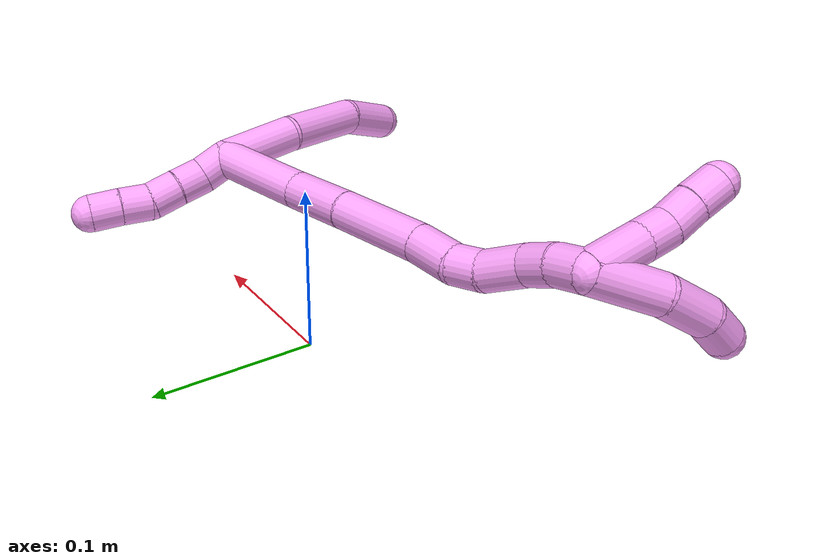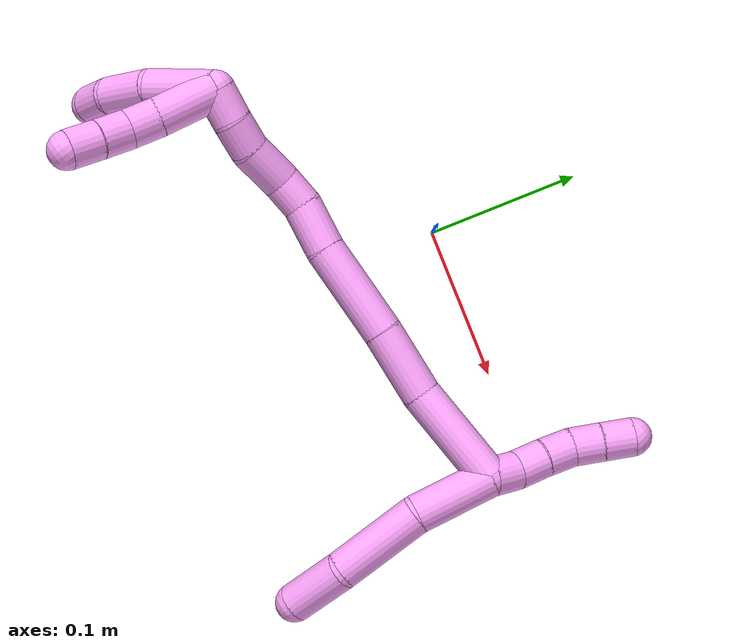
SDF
<sdf version="1.7">
 <world name="default">
  <model name="4">
   <static>0</static>
   <link name="4">
    <collision name="collision-cylinder-e_1_2_8">
     <pose>-0.004291 -0.00292 -0.025327 3.0268 -0.166753 -1.93691</pose>
     <geometry><cylinder><radius>0.0125</radius><length>0.051707</length></cylinder></geometry>
     <surface>
      <friction><ode><mu>1.16</mu><mu2>1.16</mu2><slip1>0</slip1><slip2>0</slip2></ode></friction>
      <contact><ode><kp>1e+06</kp><kd>1</kd><max_vel>0</max_vel><min_depth>0.001</min_depth></ode></contact>
     </surface>
    </collision>
    <visual name="visual-cylinder-e_1_2_8">
     <pose>-0.004291 -0.00292 -0.025327 3.0268 -0.166753 -1.93691</pose>
     <geometry><cylinder><radius>0.0125</radius><length>0.051707</length></cylinder></geometry>
     <material><ambient>1 0.65098 0.996078 1</ambient></material>
    </visual>
    <collision name="collision-cylinder-e_2_8_9">
     <pose>-0.00786 -0.004148 -0.079813 -3.08362 0.024726 -0.806196</pose>
     <geometry><cylinder><radius>0.0125</radius><length>0.058435</length></cylinder></geometry>
     <surface>
      <friction><ode><mu>1.16</mu><mu2>1.16</mu2><slip1>0</slip1><slip2>0</slip2></ode></friction>
      <contact><ode><kp>1e+06</kp><kd>1</kd><max_vel>0</max_vel><min_depth>0.001</min_depth></ode></contact>
     </surface>
    </collision>
    <visual name="visual-cylinder-e_2_8_9">
     <pose>-0.00786 -0.004148 -0.079813 -3.08362 0.024726 -0.806196</pose>
     <geometry><cylinder><radius>0.0125</radius><length>0.058435</length></cylinder></geometry>
     <material><ambient>1 0.65098 0.996078 1</ambient></material>
    </visual>
    <collision name="collision-cylinder-e_3_9_6">
     <pose>-0.006827 0.004459 -0.127661 -2.78719 0.015591 -0.087008</pose>
     <geometry><cylinder><radius>0.0125</radius><length>0.039858</length></cylinder></geometry>
     <surface>
      <friction><ode><mu>1.16</mu><mu2>1.16</mu2><slip1>0</slip1><slip2>0</slip2></ode></friction>
      <contact><ode><kp>1e+06</kp><kd>1</kd><max_vel>0</max_vel><min_depth>0.001</min_depth></ode></contact>
     </surface>
    </collision>
    <visual name="visual-cylinder-e_3_9_6">
     <pose>-0.006827 0.004459 -0.127661 -2.78719 0.015591 -0.087008</pose>
     <geometry><cylinder><radius>0.0125</radius><length>0.039858</length></cylinder></geometry>
     <material><ambient>1 0.65098 0.996078 1</ambient></material>
    </visual>
    <collision name="collision-cylinder-e_1_2_10">
     <pose>0.00351 0.004947 0.00795 -0.556582 0.35865 -0.103488</pose>
     <geometry><cylinder><radius>0.0125</radius><length>0.02</length></cylinder></geometry>
     <surface>
      <friction><ode><mu>1.16</mu><mu2>1.16</mu2><slip1>0</slip1><slip2>0</slip2></ode></friction>
      <contact><ode><kp>1e+06</kp><kd>1</kd><max_vel>0</max_vel><min_depth>0.001</min_depth></ode></contact>
     </surface>
    </collision>
    <visual name="visual-cylinder-e_1_2_10">
     <pose>0.00351 0.004947 0.00795 -0.556582 0.35865 -0.103488</pose>
     <geometry><cylinder><radius>0.0125</radius><length>0.02</length></cylinder></geometry>
     <material><ambient>1 0.65098 0.996078 1</ambient></material>
    </visual>
    <collision name="collision-cylinder-e_2_10_11">
     <pose>0.00923 0.012286 0.025356 -0.247843 0.22279 -0.027864</pose>
     <geometry><cylinder><radius>0.0125</radius><length>0.02</length></cylinder></geometry>
     <surface>
      <friction><ode><mu>1.16</mu><mu2>1.16</mu2><slip1>0</slip1><slip2>0</slip2></ode></friction>
      <contact><ode><kp>1e+06</kp><kd>1</kd><max_vel>0</max_vel><min_depth>0.001</min_depth></ode></contact>
     </surface>
    </collision>
    <visual name="visual-cylinder-e_2_10_11">
     <pose>0.00923 0.012286 0.025356 -0.247843 0.22279 -0.027864</pose>
     <geometry><cylinder><radius>0.0125</radius><length>0.02</length></cylinder></geometry>
     <material><ambient>1 0.65098 0.996078 1</ambient></material>
    </visual>
    <collision name="collision-cylinder-e_3_11_12">
     <pose>0.014156 0.017619 0.043974 -0.310471 0.275112 -0.04332</pose>
     <geometry><cylinder><radius>0.0125</radius><length>0.02</length></cylinder></geometry>
     <surface>
      <friction><ode><mu>1.16</mu><mu2>1.16</mu2><slip1>0</slip1><slip2>0</slip2></ode></friction>
      <contact><ode><kp>1e+06</kp><kd>1</kd><max_vel>0</max_vel><min_depth>0.001</min_depth></ode></contact>
     </surface>
    </collision>
    <visual name="visual-cylinder-e_3_11_12">
     <pose>0.014156 0.017619 0.043974 -0.310471 0.275112 -0.04332</pose>
     <geometry><cylinder><radius>0.0125</radius><length>0.02</length></cylinder></geometry>
     <material><ambient>1 0.65098 0.996078 1</ambient></material>
    </visual>
    <collision name="collision-cylinder-e_4_12_13">
     <pose>0.021269 0.020852 0.062115 -0.03263 0.455271 -0.007559</pose>
     <geometry><cylinder><radius>0.0125</radius><length>0.02</length></cylinder></geometry>
     <surface>
      <friction><ode><mu>1.16</mu><mu2>1.16</mu2><slip1>0</slip1><slip2>0</slip2></ode></friction>
      <contact><ode><kp>1e+06</kp><kd>1</kd><max_vel>0</max_vel><min_depth>0.001</min_depth></ode></contact>
     </surface>
    </collision>
    <visual name="visual-cylinder-e_4_12_13">
     <pose>0.021269 0.020852 0.062115 -0.03263 0.455271 -0.007559</pose>
     <geometry><cylinder><radius>0.0125</radius><length>0.02</length></cylinder></geometry>
     <material><ambient>1 0.65098 0.996078 1</ambient></material>
    </visual>
    <collision name="collision-cylinder-e_5_13_5">
     <pose>0.03015 0.022061 0.079983 -0.102706 0.464887 -0.024333</pose>
     <geometry><cylinder><radius>0.0125</radius><length>0.02</length></cylinder></geometry>
     <surface>
      <friction><ode><mu>1.16</mu><mu2>1.16</mu2><slip1>0</slip1><slip2>0</slip2></ode></friction>
      <contact><ode><kp>1e+06</kp><kd>1</kd><max_vel>0</max_vel><min_depth>0.001</min_depth></ode></contact>
     </surface>
    </collision>
    <visual name="visual-cylinder-e_5_13_5">
     <pose>0.03015 0.022061 0.079983 -0.102706 0.464887 -0.024333</pose>
     <geometry><cylinder><radius>0.0125</radius><length>0.02</length></cylinder></geometry>
     <material><ambient>1 0.65098 0.996078 1</ambient></material>
    </visual>
    <collision name="collision-cylinder-e_1_2_14">
     <pose>-0.033414 0.002488 -0.00214 -2.28102 -1.47289 2.20431</pose>
     <geometry><cylinder><radius>0.0125</radius><length>0.067149</length></cylinder></geometry>
     <surface>
      <friction><ode><mu>1.16</mu><mu2>1.16</mu2><slip1>0</slip1><slip2>0</slip2></ode></friction>
      <contact><ode><kp>1e+06</kp><kd>1</kd><max_vel>0</max_vel><min_depth>0.001</min_depth></ode></contact>
     </surface>
    </collision>
    <visual name="visual-cylinder-e_1_2_14">
     <pose>-0.033414 0.002488 -0.00214 -2.28102 -1.47289 2.20431</pose>
     <geometry><cylinder><radius>0.0125</radius><length>0.067149</length></cylinder></geometry>
     <material><ambient>1 0.65098 0.996078 1</ambient></material>
    </visual>
    <collision name="collision-cylinder-e_2_14_15">
     <pose>-0.089867 0.004092 -0.002649 0.497254 -1.49045 -0.460221</pose>
     <geometry><cylinder><radius>0.0125</radius><length>0.046229</length></cylinder></geometry>
     <surface>
      <friction><ode><mu>1.16</mu><mu2>1.16</mu2><slip1>0</slip1><slip2>0</slip2></ode></friction>
      <contact><ode><kp>1e+06</kp><kd>1</kd><max_vel>0</max_vel><min_depth>0.001</min_depth></ode></contact>
     </surface>
    </collision>
    <visual name="visual-cylinder-e_2_14_15">
     <pose>-0.089867 0.004092 -0.002649 0.497254 -1.49045 -0.460221</pose>
     <geometry><cylinder><radius>0.0125</radius><length>0.046229</length></cylinder></geometry>
     <material><ambient>1 0.65098 0.996078 1</ambient></material>
    </visual>
    <collision name="collision-cylinder-e_3_15_16">
     <pose>-0.144354 0.00371 -0.000507 -0.776488 -1.54797 0.760619</pose>
     <geometry><cylinder><radius>0.0125</radius><length>0.06291</length></cylinder></geometry>
     <surface>
      <friction><ode><mu>1.16</mu><mu2>1.16</mu2><slip1>0</slip1><slip2>0</slip2></ode></friction>
      <contact><ode><kp>1e+06</kp><kd>1</kd><max_vel>0</max_vel><min_depth>0.001</min_depth></ode></contact>
     </surface>
    </collision>
    <visual name="visual-cylinder-e_3_15_16">
     <pose>-0.144354 0.00371 -0.000507 -0.776488 -1.54797 0.760619</pose>
     <geometry><cylinder><radius>0.0125</radius><length>0.06291</length></cylinder></geometry>
     <material><ambient>1 0.65098 0.996078 1</ambient></material>
    </visual>
    <collision name="collision-cylinder-e_4_16_17">
     <pose>-0.191189 0.004789 0.002246 -0.251304 -1.4216 0.216647</pose>
     <geometry><cylinder><radius>0.0125</radius><length>0.031123</length></cylinder></geometry>
     <surface>
      <friction><ode><mu>1.16</mu><mu2>1.16</mu2><slip1>0</slip1><slip2>0</slip2></ode></friction>
      <contact><ode><kp>1e+06</kp><kd>1</kd><max_vel>0</max_vel><min_depth>0.001</min_depth></ode></contact>
     </surface>
    </collision>
    <visual name="visual-cylinder-e_4_16_17">
     <pose>-0.191189 0.004789 0.002246 -0.251304 -1.4216 0.216647</pose>
     <geometry><cylinder><radius>0.0125</radius><length>0.031123</length></cylinder></geometry>
     <material><ambient>1 0.65098 0.996078 1</ambient></material>
    </visual>
    <collision name="collision-cylinder-e_5_17_18">
     <pose>-0.216628 0.004212 0.003576 2.23968 -1.42578 -2.12048</pose>
     <geometry><cylinder><radius>0.0125</radius><length>0.020314</length></cylinder></geometry>
     <surface>
      <friction><ode><mu>1.16</mu><mu2>1.16</mu2><slip1>0</slip1><slip2>0</slip2></ode></friction>
      <contact><ode><kp>1e+06</kp><kd>1</kd><max_vel>0</max_vel><min_depth>0.001</min_depth></ode></contact>
     </surface>
    </collision>
    <visual name="visual-cylinder-e_5_17_18">
     <pose>-0.216628 0.004212 0.003576 2.23968 -1.42578 -2.12048</pose>
     <geometry><cylinder><radius>0.0125</radius><length>0.020314</length></cylinder></geometry>
     <material><ambient>1 0.65098 0.996078 1</ambient></material>
    </visual>
    <collision name="collision-cylinder-e_6_18_19">
     <pose>-0.239952 -0.002859 0.00041 1.93494 -1.12546 -1.48256</pose>
     <geometry><cylinder><radius>0.0125</radius><length>0.029417</length></cylinder></geometry>
     <surface>
      <friction><ode><mu>1.16</mu><mu2>1.16</mu2><slip1>0</slip1><slip2>0</slip2></ode></friction>
      <contact><ode><kp>1e+06</kp><kd>1</kd><max_vel>0</max_vel><min_depth>0.001</min_depth></ode></contact>
     </surface>
    </collision>
    <visual name="visual-cylinder-e_6_18_19">
     <pose>-0.239952 -0.002859 0.00041 1.93494 -1.12546 -1.48256</pose>
     <geometry><cylinder><radius>0.0125</radius><length>0.029417</length></cylinder></geometry>
     <material><ambient>1 0.65098 0.996078 1</ambient></material>
    </visual>
    <collision name="collision-cylinder-e_7_19_20">
     <pose>-0.26306 -0.012739 -0.001003 1.36083 -1.18024 -0.993428</pose>
     <geometry><cylinder><radius>0.0125</radius><length>0.02127</length></cylinder></geometry>
     <surface>
      <friction><ode><mu>1.16</mu><mu2>1.16</mu2><slip1>0</slip1><slip2>0</slip2></ode></friction>
      <contact><ode><kp>1e+06</kp><kd>1</kd><max_vel>0</max_vel><min_depth>0.001</min_depth></ode></contact>
     </surface>
    </collision>
    <visual name="visual-cylinder-e_7_19_20">
     <pose>-0.26306 -0.012739 -0.001003 1.36083 -1.18024 -0.993428</pose>
     <geometry><cylinder><radius>0.0125</radius><length>0.02127</length></cylinder></geometry>
     <material><ambient>1 0.65098 0.996078 1</ambient></material>
    </visual>
    <collision name="collision-cylinder-e_8_20_1">
     <pose>-0.28336 -0.018936 0.001249 1.00894 -1.3234 -0.81221</pose>
     <geometry><cylinder><radius>0.0125</radius><length>0.021589</length></cylinder></geometry>
     <surface>
      <friction><ode><mu>1.16</mu><mu2>1.16</mu2><slip1>0</slip1><slip2>0</slip2></ode></friction>
      <contact><ode><kp>1e+06</kp><kd>1</kd><max_vel>0</max_vel><min_depth>0.001</min_depth></ode></contact>
     </surface>
    </collision>
    <visual name="visual-cylinder-e_8_20_1">
     <pose>-0.28336 -0.018936 0.001249 1.00894 -1.3234 -0.81221</pose>
     <geometry><cylinder><radius>0.0125</radius><length>0.021589</length></cylinder></geometry>
     <material><ambient>1 0.65098 0.996078 1</ambient></material>
    </visual>
    <collision name="collision-cylinder-e_1_1_21">
     <pose>-0.307226 -0.01309 -0.013507 -2.67792 -0.638014 1.90044</pose>
     <geometry><cylinder><radius>0.0125</radius><length>0.044998</length></cylinder></geometry>
     <surface>
      <friction><ode><mu>1.16</mu><mu2>1.16</mu2><slip1>0</slip1><slip2>0</slip2></ode></friction>
      <contact><ode><kp>1e+06</kp><kd>1</kd><max_vel>0</max_vel><min_depth>0.001</min_depth></ode></contact>
     </surface>
    </collision>
    <visual name="visual-cylinder-e_1_1_21">
     <pose>-0.307226 -0.01309 -0.013507 -2.67792 -0.638014 1.90044</pose>
     <geometry><cylinder><radius>0.0125</radius><length>0.044998</length></cylinder></geometry>
     <material><ambient>1 0.65098 0.996078 1</ambient></material>
    </visual>
    <collision name="collision-cylinder-e_2_21_22">
     <pose>-0.327462 0.003955 -0.041695 -2.50099 -0.427663 1.15923</pose>
     <geometry><cylinder><radius>0.0125</radius><length>0.032959</length></cylinder></geometry>
     <surface>
      <friction><ode><mu>1.16</mu><mu2>1.16</mu2><slip1>0</slip1><slip2>0</slip2></ode></friction>
      <contact><ode><kp>1e+06</kp><kd>1</kd><max_vel>0</max_vel><min_depth>0.001</min_depth></ode></contact>
     </surface>
    </collision>
    <visual name="visual-cylinder-e_2_21_22">
     <pose>-0.327462 0.003955 -0.041695 -2.50099 -0.427663 1.15923</pose>
     <geometry><cylinder><radius>0.0125</radius><length>0.032959</length></cylinder></geometry>
     <material><ambient>1 0.65098 0.996078 1</ambient></material>
    </visual>
    <collision name="collision-cylinder-e_3_22_4">
     <pose>-0.337089 0.021081 -0.060575 -2.26951 -0.25616 0.539317</pose>
     <geometry><cylinder><radius>0.0125</radius><length>0.022042</length></cylinder></geometry>
     <surface>
      <friction><ode><mu>1.16</mu><mu2>1.16</mu2><slip1>0</slip1><slip2>0</slip2></ode></friction>
      <contact><ode><kp>1e+06</kp><kd>1</kd><max_vel>0</max_vel><min_depth>0.001</min_depth></ode></contact>
     </surface>
    </collision>
    <visual name="visual-cylinder-e_3_22_4">
     <pose>-0.337089 0.021081 -0.060575 -2.26951 -0.25616 0.539317</pose>
     <geometry><cylinder><radius>0.0125</radius><length>0.022042</length></cylinder></geometry>
     <material><ambient>1 0.65098 0.996078 1</ambient></material>
    </visual>
    <collision name="collision-cylinder-e_1_1_23">
     <pose>-0.2969 -0.023968 -0.016302 2.99525 -0.159065 -1.65436</pose>
     <geometry><cylinder><radius>0.0125</radius><length>0.038819</length></cylinder></geometry>
     <surface>
      <friction><ode><mu>1.16</mu><mu2>1.16</mu2><slip1>0</slip1><slip2>0</slip2></ode></friction>
      <contact><ode><kp>1e+06</kp><kd>1</kd><max_vel>0</max_vel><min_depth>0.001</min_depth></ode></contact>
     </surface>
    </collision>
    <visual name="visual-cylinder-e_1_1_23">
     <pose>-0.2969 -0.023968 -0.016302 2.99525 -0.159065 -1.65436</pose>
     <geometry><cylinder><radius>0.0125</radius><length>0.038819</length></cylinder></geometry>
     <material><ambient>1 0.65098 0.996078 1</ambient></material>
    </visual>
    <collision name="collision-cylinder-e_2_23_24">
     <pose>-0.302083 -0.028737 -0.044968 2.94096 -0.209713 -1.61538</pose>
     <geometry><cylinder><radius>0.0125</radius><length>0.020254</length></cylinder></geometry>
     <surface>
      <friction><ode><mu>1.16</mu><mu2>1.16</mu2><slip1>0</slip1><slip2>0</slip2></ode></friction>
      <contact><ode><kp>1e+06</kp><kd>1</kd><max_vel>0</max_vel><min_depth>0.001</min_depth></ode></contact>
     </surface>
    </collision>
    <visual name="visual-cylinder-e_2_23_24">
     <pose>-0.302083 -0.028737 -0.044968 2.94096 -0.209713 -1.61538</pose>
     <geometry><cylinder><radius>0.0125</radius><length>0.020254</length></cylinder></geometry>
     <material><ambient>1 0.65098 0.996078 1</ambient></material>
    </visual>
    <collision name="collision-cylinder-e_3_24_25">
     <pose>-0.306221 -0.03526 -0.063511 2.66611 -0.201464 -0.79033</pose>
     <geometry><cylinder><radius>0.0125</radius><length>0.020289</length></cylinder></geometry>
     <surface>
      <friction><ode><mu>1.16</mu><mu2>1.16</mu2><slip1>0</slip1><slip2>0</slip2></ode></friction>
      <contact><ode><kp>1e+06</kp><kd>1</kd><max_vel>0</max_vel><min_depth>0.001</min_depth></ode></contact>
     </surface>
    </collision>
    <visual name="visual-cylinder-e_3_24_25">
     <pose>-0.306221 -0.03526 -0.063511 2.66611 -0.201464 -0.79033</pose>
     <geometry><cylinder><radius>0.0125</radius><length>0.020289</length></cylinder></geometry>
     <material><ambient>1 0.65098 0.996078 1</ambient></material>
    </visual>
    <collision name="collision-cylinder-e_4_25_3">
     <pose>-0.31062 -0.043927 -0.081509 2.71925 -0.231651 -0.99451</pose>
     <geometry><cylinder><radius>0.0125</radius><length>0.020638</length></cylinder></geometry>
     <surface>
      <friction><ode><mu>1.16</mu><mu2>1.16</mu2><slip1>0</slip1><slip2>0</slip2></ode></friction>
      <contact><ode><kp>1e+06</kp><kd>1</kd><max_vel>0</max_vel><min_depth>0.001</min_depth></ode></contact>
     </surface>
    </collision>
    <visual name="visual-cylinder-e_4_25_3">
     <pose>-0.31062 -0.043927 -0.081509 2.71925 -0.231651 -0.99451</pose>
     <geometry><cylinder><radius>0.0125</radius><length>0.020638</length></cylinder></geometry>
     <material><ambient>1 0.65098 0.996078 1</ambient></material>
    </visual>
    <collision name="collision-sphere-3">
     <pose>-0.312989 -0.048044 -0.09067 0 -0 0</pose>
     <geometry><sphere><radius>0.0125</radius></sphere></geometry>
     <surface>
      <friction><ode><mu>1.16</mu><mu2>1.16</mu2><slip1>0</slip1><slip2>0</slip2></ode></friction>
      <contact><ode><kp>1e+06</kp><kd>1</kd><max_vel>0</max_vel><min_depth>0.001</min_depth></ode></contact>
     </surface>
    </collision>
    <visual name="visual-sphere-3">
     <pose>-0.312989 -0.048044 -0.09067 0 -0 0</pose>
     <geometry><sphere><radius>0.0125</radius></sphere></geometry>
     <material><ambient>1 0.65098 0.996078 1</ambient></material>
    </visual>
    <collision name="collision-sphere-25">
     <pose>-0.308251 -0.03981 -0.072348 0 -0 0</pose>
     <geometry><sphere><radius>0.0125</radius></sphere></geometry>
     <surface>
      <friction><ode><mu>1.16</mu><mu2>1.16</mu2><slip1>0</slip1><slip2>0</slip2></ode></friction>
      <contact><ode><kp>1e+06</kp><kd>1</kd><max_vel>0</max_vel><min_depth>0.001</min_depth></ode></contact>
     </surface>
    </collision>
    <visual name="visual-sphere-25">
     <pose>-0.308251 -0.03981 -0.072348 0 -0 0</pose>
     <geometry><sphere><radius>0.0125</radius></sphere></geometry>
     <material><ambient>1 0.65098 0.996078 1</ambient></material>
    </visual>
    <collision name="collision-sphere-24">
     <pose>-0.304191 -0.030711 -0.054674 0 -0 0</pose>
     <geometry><sphere><radius>0.0125</radius></sphere></geometry>
     <surface>
      <friction><ode><mu>1.16</mu><mu2>1.16</mu2><slip1>0</slip1><slip2>0</slip2></ode></friction>
      <contact><ode><kp>1e+06</kp><kd>1</kd><max_vel>0</max_vel><min_depth>0.001</min_depth></ode></contact>
     </surface>
    </collision>
    <visual name="visual-sphere-24">
     <pose>-0.304191 -0.030711 -0.054674 0 -0 0</pose>
     <geometry><sphere><radius>0.0125</radius></sphere></geometry>
     <material><ambient>1 0.65098 0.996078 1</ambient></material>
    </visual>
    <collision name="collision-sphere-23">
     <pose>-0.299975 -0.026763 -0.035262 0 -0 0</pose>
     <geometry><sphere><radius>0.0125</radius></sphere></geometry>
     <surface>
      <friction><ode><mu>1.16</mu><mu2>1.16</mu2><slip1>0</slip1><slip2>0</slip2></ode></friction>
      <contact><ode><kp>1e+06</kp><kd>1</kd><max_vel>0</max_vel><min_depth>0.001</min_depth></ode></contact>
     </surface>
    </collision>
    <visual name="visual-sphere-23">
     <pose>-0.299975 -0.026763 -0.035262 0 -0 0</pose>
     <geometry><sphere><radius>0.0125</radius></sphere></geometry>
     <material><ambient>1 0.65098 0.996078 1</ambient></material>
    </visual>
    <collision name="collision-sphere-4">
     <pose>-0.339882 0.029244 -0.067433 0 -0 0</pose>
     <geometry><sphere><radius>0.0125</radius></sphere></geometry>
     <surface>
      <friction><ode><mu>1.16</mu><mu2>1.16</mu2><slip1>0</slip1><slip2>0</slip2></ode></friction>
      <contact><ode><kp>1e+06</kp><kd>1</kd><max_vel>0</max_vel><min_depth>0.001</min_depth></ode></contact>
     </surface>
    </collision>
    <visual name="visual-sphere-4">
     <pose>-0.339882 0.029244 -0.067433 0 -0 0</pose>
     <geometry><sphere><radius>0.0125</radius></sphere></geometry>
     <material><ambient>1 0.65098 0.996078 1</ambient></material>
    </visual>
    <collision name="collision-sphere-22">
     <pose>-0.334297 0.012918 -0.053717 0 -0 0</pose>
     <geometry><sphere><radius>0.0125</radius></sphere></geometry>
     <surface>
      <friction><ode><mu>1.16</mu><mu2>1.16</mu2><slip1>0</slip1><slip2>0</slip2></ode></friction>
      <contact><ode><kp>1e+06</kp><kd>1</kd><max_vel>0</max_vel><min_depth>0.001</min_depth></ode></contact>
     </surface>
    </collision>
    <visual name="visual-sphere-22">
     <pose>-0.334297 0.012918 -0.053717 0 -0 0</pose>
     <geometry><sphere><radius>0.0125</radius></sphere></geometry>
     <material><ambient>1 0.65098 0.996078 1</ambient></material>
    </visual>
    <collision name="collision-sphere-21">
     <pose>-0.320627 -0.005007 -0.029672 0 -0 0</pose>
     <geometry><sphere><radius>0.0125</radius></sphere></geometry>
     <surface>
      <friction><ode><mu>1.16</mu><mu2>1.16</mu2><slip1>0</slip1><slip2>0</slip2></ode></friction>
      <contact><ode><kp>1e+06</kp><kd>1</kd><max_vel>0</max_vel><min_depth>0.001</min_depth></ode></contact>
     </surface>
    </collision>
    <visual name="visual-sphere-21">
     <pose>-0.320627 -0.005007 -0.029672 0 -0 0</pose>
     <geometry><sphere><radius>0.0125</radius></sphere></geometry>
     <material><ambient>1 0.65098 0.996078 1</ambient></material>
    </visual>
    <collision name="collision-sphere-1">
     <pose>-0.293826 -0.021173 0.002658 0 -0 0</pose>
     <geometry><sphere><radius>0.0125</radius></sphere></geometry>
     <surface>
      <friction><ode><mu>1.16</mu><mu2>1.16</mu2><slip1>0</slip1><slip2>0</slip2></ode></friction>
      <contact><ode><kp>1e+06</kp><kd>1</kd><max_vel>0</max_vel><min_depth>0.001</min_depth></ode></contact>
     </surface>
    </collision>
    <visual name="visual-sphere-1">
     <pose>-0.293826 -0.021173 0.002658 0 -0 0</pose>
     <geometry><sphere><radius>0.0125</radius></sphere></geometry>
     <material><ambient>1 0.65098 0.996078 1</ambient></material>
    </visual>
    <collision name="collision-sphere-11">
     <pose>0.011439 0.014678 0.03481 0 -0 0</pose>
     <geometry><sphere><radius>0.0125</radius></sphere></geometry>
     <surface>
      <friction><ode><mu>1.16</mu><mu2>1.16</mu2><slip1>0</slip1><slip2>0</slip2></ode></friction>
      <contact><ode><kp>1e+06</kp><kd>1</kd><max_vel>0</max_vel><min_depth>0.001</min_depth></ode></contact>
     </surface>
    </collision>
    <visual name="visual-sphere-11">
     <pose>0.011439 0.014678 0.03481 0 -0 0</pose>
     <geometry><sphere><radius>0.0125</radius></sphere></geometry>
     <material><ambient>1 0.65098 0.996078 1</ambient></material>
    </visual>
    <collision name="collision-sphere-10">
     <pose>0.00702 0.009893 0.015901 0 -0 0</pose>
     <geometry><sphere><radius>0.0125</radius></sphere></geometry>
     <surface>
      <friction><ode><mu>1.16</mu><mu2>1.16</mu2><slip1>0</slip1><slip2>0</slip2></ode></friction>
      <contact><ode><kp>1e+06</kp><kd>1</kd><max_vel>0</max_vel><min_depth>0.001</min_depth></ode></contact>
     </surface>
    </collision>
    <visual name="visual-sphere-10">
     <pose>0.00702 0.009893 0.015901 0 -0 0</pose>
     <geometry><sphere><radius>0.0125</radius></sphere></geometry>
     <material><ambient>1 0.65098 0.996078 1</ambient></material>
    </visual>
    <collision name="collision-sphere-6">
     <pose>-0.006516 0.011374 -0.14635 0 -0 0</pose>
     <geometry><sphere><radius>0.0125</radius></sphere></geometry>
     <surface>
      <friction><ode><mu>1.16</mu><mu2>1.16</mu2><slip1>0</slip1><slip2>0</slip2></ode></friction>
      <contact><ode><kp>1e+06</kp><kd>1</kd><max_vel>0</max_vel><min_depth>0.001</min_depth></ode></contact>
     </surface>
    </collision>
    <visual name="visual-sphere-6">
     <pose>-0.006516 0.011374 -0.14635 0 -0 0</pose>
     <geometry><sphere><radius>0.0125</radius></sphere></geometry>
     <material><ambient>1 0.65098 0.996078 1</ambient></material>
    </visual>
    <collision name="collision-sphere-9">
     <pose>-0.007138 -0.002456 -0.108973 0 -0 0</pose>
     <geometry><sphere><radius>0.0125</radius></sphere></geometry>
     <surface>
      <friction><ode><mu>1.16</mu><mu2>1.16</mu2><slip1>0</slip1><slip2>0</slip2></ode></friction>
      <contact><ode><kp>1e+06</kp><kd>1</kd><max_vel>0</max_vel><min_depth>0.001</min_depth></ode></contact>
     </surface>
    </collision>
    <visual name="visual-sphere-9">
     <pose>-0.007138 -0.002456 -0.108973 0 -0 0</pose>
     <geometry><sphere><radius>0.0125</radius></sphere></geometry>
     <material><ambient>1 0.65098 0.996078 1</ambient></material>
    </visual>
    <collision name="collision-sphere-2">
     <geometry><sphere><radius>0.0125</radius></sphere></geometry>
     <surface>
      <friction><ode><mu>1.16</mu><mu2>1.16</mu2><slip1>0</slip1><slip2>0</slip2></ode></friction>
      <contact><ode><kp>1e+06</kp><kd>1</kd><max_vel>0</max_vel><min_depth>0.001</min_depth></ode></contact>
     </surface>
    </collision>
    <visual name="visual-sphere-2">
     <geometry><sphere><radius>0.0125</radius></sphere></geometry>
     <material><ambient>1 0.65098 0.996078 1</ambient></material>
    </visual>
    <collision name="collision-sphere-19">
     <pose>-0.253226 -0.00878 -0.001847 0 -0 0</pose>
     <geometry><sphere><radius>0.0125</radius></sphere></geometry>
     <surface>
      <friction><ode><mu>1.16</mu><mu2>1.16</mu2><slip1>0</slip1><slip2>0</slip2></ode></friction>
      <contact><ode><kp>1e+06</kp><kd>1</kd><max_vel>0</max_vel><min_depth>0.001</min_depth></ode></contact>
     </surface>
    </collision>
    <visual name="visual-sphere-19">
     <pose>-0.253226 -0.00878 -0.001847 0 -0 0</pose>
     <geometry><sphere><radius>0.0125</radius></sphere></geometry>
     <material><ambient>1 0.65098 0.996078 1</ambient></material>
    </visual>
    <collision name="collision-sphere-8">
     <pose>-0.008582 -0.005841 -0.050654 0 -0 0</pose>
     <geometry><sphere><radius>0.0125</radius></sphere></geometry>
     <surface>
      <friction><ode><mu>1.16</mu><mu2>1.16</mu2><slip1>0</slip1><slip2>0</slip2></ode></friction>
      <contact><ode><kp>1e+06</kp><kd>1</kd><max_vel>0</max_vel><min_depth>0.001</min_depth></ode></contact>
     </surface>
    </collision>
    <visual name="visual-sphere-8">
     <pose>-0.008582 -0.005841 -0.050654 0 -0 0</pose>
     <geometry><sphere><radius>0.0125</radius></sphere></geometry>
     <material><ambient>1 0.65098 0.996078 1</ambient></material>
    </visual>
    <collision name="collision-sphere-12">
     <pose>0.016872 0.020559 0.053138 0 -0 0</pose>
     <geometry><sphere><radius>0.0125</radius></sphere></geometry>
     <surface>
      <friction><ode><mu>1.16</mu><mu2>1.16</mu2><slip1>0</slip1><slip2>0</slip2></ode></friction>
      <contact><ode><kp>1e+06</kp><kd>1</kd><max_vel>0</max_vel><min_depth>0.001</min_depth></ode></contact>
     </surface>
    </collision>
    <visual name="visual-sphere-12">
     <pose>0.016872 0.020559 0.053138 0 -0 0</pose>
     <geometry><sphere><radius>0.0125</radius></sphere></geometry>
     <material><ambient>1 0.65098 0.996078 1</ambient></material>
    </visual>
    <collision name="collision-sphere-13">
     <pose>0.025666 0.021145 0.071091 0 -0 0</pose>
     <geometry><sphere><radius>0.0125</radius></sphere></geometry>
     <surface>
      <friction><ode><mu>1.16</mu><mu2>1.16</mu2><slip1>0</slip1><slip2>0</slip2></ode></friction>
      <contact><ode><kp>1e+06</kp><kd>1</kd><max_vel>0</max_vel><min_depth>0.001</min_depth></ode></contact>
     </surface>
    </collision>
    <visual name="visual-sphere-13">
     <pose>0.025666 0.021145 0.071091 0 -0 0</pose>
     <geometry><sphere><radius>0.0125</radius></sphere></geometry>
     <material><ambient>1 0.65098 0.996078 1</ambient></material>
    </visual>
    <collision name="collision-sphere-5">
     <pose>0.034633 0.022978 0.088875 0 -0 0</pose>
     <geometry><sphere><radius>0.0125</radius></sphere></geometry>
     <surface>
      <friction><ode><mu>1.16</mu><mu2>1.16</mu2><slip1>0</slip1><slip2>0</slip2></ode></friction>
      <contact><ode><kp>1e+06</kp><kd>1</kd><max_vel>0</max_vel><min_depth>0.001</min_depth></ode></contact>
     </surface>
    </collision>
    <visual name="visual-sphere-5">
     <pose>0.034633 0.022978 0.088875 0 -0 0</pose>
     <geometry><sphere><radius>0.0125</radius></sphere></geometry>
     <material><ambient>1 0.65098 0.996078 1</ambient></material>
    </visual>
    <collision name="collision-sphere-14">
     <pose>-0.066827 0.004977 -0.00428 0 -0 0</pose>
     <geometry><sphere><radius>0.0125</radius></sphere></geometry>
     <surface>
      <friction><ode><mu>1.16</mu><mu2>1.16</mu2><slip1>0</slip1><slip2>0</slip2></ode></friction>
      <contact><ode><kp>1e+06</kp><kd>1</kd><max_vel>0</max_vel><min_depth>0.001</min_depth></ode></contact>
     </surface>
    </collision>
    <visual name="visual-sphere-14">
     <pose>-0.066827 0.004977 -0.00428 0 -0 0</pose>
     <geometry><sphere><radius>0.0125</radius></sphere></geometry>
     <material><ambient>1 0.65098 0.996078 1</ambient></material>
    </visual>
    <collision name="collision-sphere-15">
     <pose>-0.112907 0.003207 -0.001019 0 -0 0</pose>
     <geometry><sphere><radius>0.0125</radius></sphere></geometry>
     <surface>
      <friction><ode><mu>1.16</mu><mu2>1.16</mu2><slip1>0</slip1><slip2>0</slip2></ode></friction>
      <contact><ode><kp>1e+06</kp><kd>1</kd><max_vel>0</max_vel><min_depth>0.001</min_depth></ode></contact>
     </surface>
    </collision>
    <visual name="visual-sphere-15">
     <pose>-0.112907 0.003207 -0.001019 0 -0 0</pose>
     <geometry><sphere><radius>0.0125</radius></sphere></geometry>
     <material><ambient>1 0.65098 0.996078 1</ambient></material>
    </visual>
    <collision name="collision-sphere-16">
     <pose>-0.1758 0.004213 6e-06 0 -0 0</pose>
     <geometry><sphere><radius>0.0125</radius></sphere></geometry>
     <surface>
      <friction><ode><mu>1.16</mu><mu2>1.16</mu2><slip1>0</slip1><slip2>0</slip2></ode></friction>
      <contact><ode><kp>1e+06</kp><kd>1</kd><max_vel>0</max_vel><min_depth>0.001</min_depth></ode></contact>
     </surface>
    </collision>
    <visual name="visual-sphere-16">
     <pose>-0.1758 0.004213 6e-06 0 -0 0</pose>
     <geometry><sphere><radius>0.0125</radius></sphere></geometry>
     <material><ambient>1 0.65098 0.996078 1</ambient></material>
    </visual>
    <collision name="collision-sphere-17">
     <pose>-0.206578 0.005364 0.004487 0 -0 0</pose>
     <geometry><sphere><radius>0.0125</radius></sphere></geometry>
     <surface>
      <friction><ode><mu>1.16</mu><mu2>1.16</mu2><slip1>0</slip1><slip2>0</slip2></ode></friction>
      <contact><ode><kp>1e+06</kp><kd>1</kd><max_vel>0</max_vel><min_depth>0.001</min_depth></ode></contact>
     </surface>
    </collision>
    <visual name="visual-sphere-17">
     <pose>-0.206578 0.005364 0.004487 0 -0 0</pose>
     <geometry><sphere><radius>0.0125</radius></sphere></geometry>
     <material><ambient>1 0.65098 0.996078 1</ambient></material>
    </visual>
    <collision name="collision-sphere-18">
     <pose>-0.226678 0.003061 0.002666 0 -0 0</pose>
     <geometry><sphere><radius>0.0125</radius></sphere></geometry>
     <surface>
      <friction><ode><mu>1.16</mu><mu2>1.16</mu2><slip1>0</slip1><slip2>0</slip2></ode></friction>
      <contact><ode><kp>1e+06</kp><kd>1</kd><max_vel>0</max_vel><min_depth>0.001</min_depth></ode></contact>
     </surface>
    </collision>
    <visual name="visual-sphere-18">
     <pose>-0.226678 0.003061 0.002666 0 -0 0</pose>
     <geometry><sphere><radius>0.0125</radius></sphere></geometry>
     <material><ambient>1 0.65098 0.996078 1</ambient></material>
    </visual>
    <collision name="collision-sphere-20">
     <pose>-0.272894 -0.016699 -0.000159 0 -0 0</pose>
     <geometry><sphere><radius>0.0125</radius></sphere></geometry>
     <surface>
      <friction><ode><mu>1.16</mu><mu2>1.16</mu2><slip1>0</slip1><slip2>0</slip2></ode></friction>
      <contact><ode><kp>1e+06</kp><kd>1</kd><max_vel>0</max_vel><min_depth>0.001</min_depth></ode></contact>
     </surface>
    </collision>
    <visual name="visual-sphere-20">
     <pose>-0.272894 -0.016699 -0.000159 0 -0 0</pose>
     <geometry><sphere><radius>0.0125</radius></sphere></geometry>
     <material><ambient>1 0.65098 0.996078 1</ambient></material>
    </visual>
    <inertial>
     <pose>-0.141738 -0.002305 -0.019525 0 -0 0</pose>
     <mass>0.75</mass>
     <inertia><ixx>-2.7e-05</ixx><ixy>0</ixy><ixz>0</ixz><iyy>4.5e-05</iyy><iyz>0</iyz><izz>5.6e-05</izz></inertia>
    </inertial>
   </link>
   <pose>0.157755 -0.026535 0.056021 -1.55244 0.010515 0.244815</pose>
  </model>
 </world>
</sdf>
